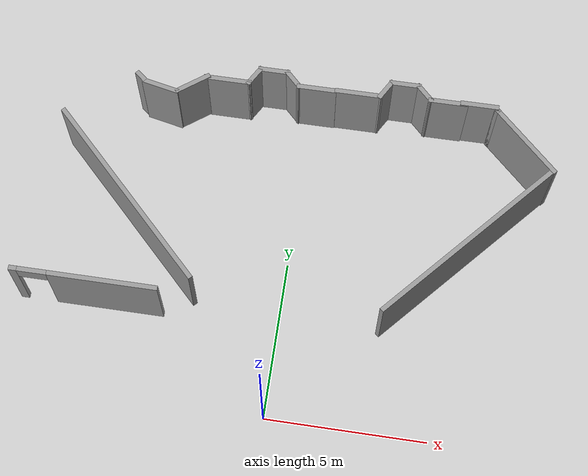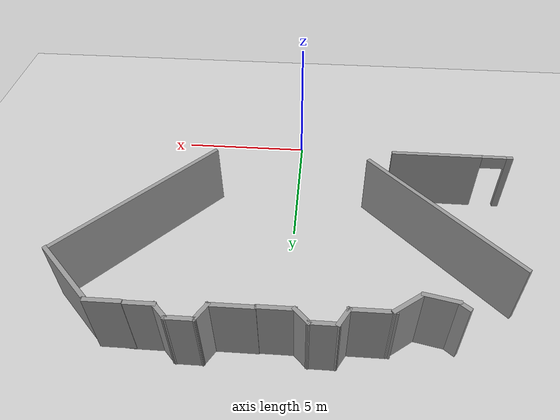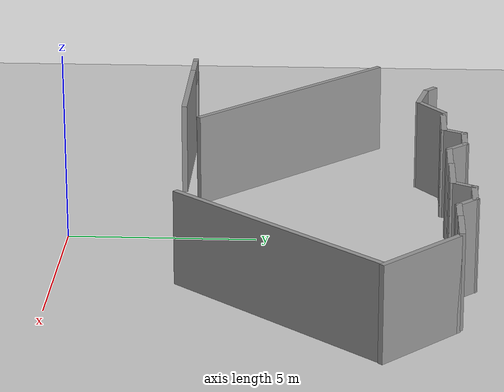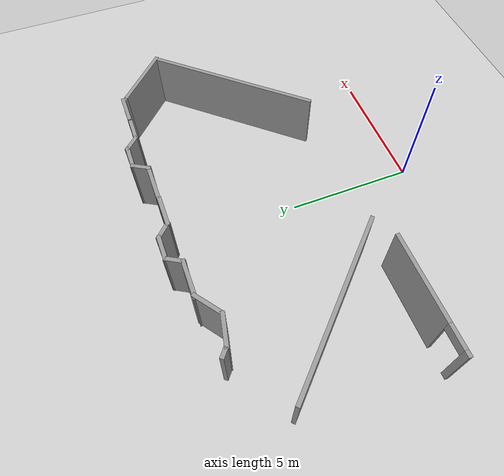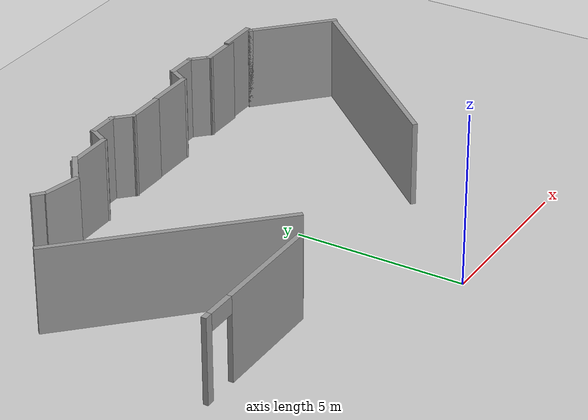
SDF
<sdf version="1.6">
 <world name="default">
  <model name="ground_plane">
   <static>1</static>
   <link name="link">
    <collision name="collision">
     <geometry><plane><normal>0 0 1</normal><size>100 100</size></plane></geometry>
     <surface>
      <contact><collide_bitmask>65535</collide_bitmask></contact>
      <friction><ode><mu>100</mu><mu2>50</mu2></ode></friction>
     </surface>
    </collision>
    <visual name="visual">
     <cast_shadows>0</cast_shadows>
     <geometry><plane><normal>0 0 1</normal><size>100 100</size></plane></geometry>
     <material>
      <script><uri>file://media/materials/scripts/gazebo.material</uri><name>Gazebo/Grey</name></script>
     </material>
    </visual>
   </link>
  </model>
  <model name="wall(6.9)">
   <link name="Wall_106">
    <inertial>
     <mass>1</mass>
     <inertia><ixx>1</ixx><ixy>0</ixy><ixz>0</ixz><iyy>1</iyy><iyz>0</iyz><izz>1</izz></inertia>
    </inertial>
    <visual name="Wall_106_Visual">
     <pose>0 0 1.25 0 -0 0</pose>
     <geometry><box><size>6.9 0.15 2.5</size></box></geometry>
     <material>
      <script><uri>file://media/materials/scripts/gazebo.material</uri><name>Gazebo/Grey</name></script>
      <ambient>1 1 1 1</ambient>
      <shader type="vertex"><normal_map>__default__</normal_map></shader>
      <diffuse>0.7 0.7 0.7 1</diffuse>
      <specular>0.01 0.01 0.01 1</specular>
      <emissive>0 0 0 1</emissive>
     </material>
     <meta><layer>0</layer></meta>
    </visual>
    <collision name="Wall_106_Collision">
     <pose>0 0 1.25 0 -0 0</pose>
     <geometry><box><size>6.75 0.15 2.5</size></box></geometry>
     <surface>
      <friction>
       <ode><mu>1</mu><mu2>1</mu2><fdir1>0 0 0</fdir1><slip1>0</slip1><slip2>0</slip2></ode>
       <torsional>
        <coefficient>1</coefficient>
        <patch_radius>0</patch_radius>
        <surface_radius>0</surface_radius>
        <use_patch_radius>1</use_patch_radius>
        <ode><slip>0</slip></ode>
       </torsional>
      </friction>
      <bounce><restitution_coefficient>0</restitution_coefficient><threshold>1e+06</threshold></bounce>
      <contact>
       <collide_without_contact>0</collide_without_contact>
       <collide_without_contact_bitmask>1</collide_without_contact_bitmask>
       <collide_bitmask>1</collide_bitmask>
       <ode>
        <soft_cfm>0</soft_cfm>
        <soft_erp>0.2</soft_erp>
        <kp>1e+13</kp>
        <kd>1</kd>
        <max_vel>0.01</max_vel>
        <min_depth>0</min_depth>
       </ode>
       <bullet>
        <split_impulse>1</split_impulse>
        <split_impulse_penetration_threshold>-0.01</split_impulse_penetration_threshold>
        <soft_cfm>0</soft_cfm>
        <soft_erp>0.2</soft_erp>
        <kp>1e+13</kp>
        <kd>1</kd>
       </bullet>
      </contact>
     </surface>
    </collision>
   </link>
   <static>1</static>
   <pose>-5.08386 5.75321 0 0 0 -0.789714</pose>
  </model>
  <model name="lift">
   <pose>-1.30167 10.2174 0 0 0 -3.13924</pose>
   <link name="Wall_113">
    <collision name="Wall_113_Collision">
     <geometry><box><size>1.5 0.15 2.5</size></box></geometry>
     <pose>0 0 1.25 0 -0 0</pose>
    </collision>
    <visual name="Wall_113_Visual">
     <pose>0 0 1.25 0 -0 0</pose>
     <geometry><box><size>1.5 0.15 2.5</size></box></geometry>
     <material>
      <script><uri>file://media/materials/scripts/gazebo.material</uri><name>Gazebo/Grey</name></script>
      <ambient>1 1 1 1</ambient>
     </material>
     <meta><layer>0</layer></meta>
    </visual>
    <pose>1.33713 0.261614 0 0 -0 3.14159</pose>
   </link>
   <link name="Wall_114">
    <collision name="Wall_114_Collision">
     <geometry><box><size>0.75 0.15 2.5</size></box></geometry>
     <pose>0 0 1.25 0 -0 0</pose>
    </collision>
    <visual name="Wall_114_Visual">
     <pose>0 0 1.25 0 -0 0</pose>
     <geometry><box><size>0.75 0.15 2.5</size></box></geometry>
     <material>
      <script><uri>file://media/materials/scripts/gazebo.material</uri><name>Gazebo/Grey</name></script>
      <ambient>1 1 1 1</ambient>
     </material>
     <meta><layer>0</layer></meta>
    </visual>
    <pose>0.512132 0.001807 0 0 -0 -2.0944</pose>
   </link>
   <link name="Wall_115">
    <collision name="Wall_115_Collision">
     <geometry><box><size>1 0.15 2.5</size></box></geometry>
     <pose>0 0 1.25 0 -0 0</pose>
    </collision>
    <visual name="Wall_115_Visual">
     <pose>0 0 1.25 0 -0 0</pose>
     <geometry><box><size>1 0.15 2.5</size></box></geometry>
     <material>
      <script><uri>file://media/materials/scripts/gazebo.material</uri><name>Gazebo/Grey</name></script>
      <ambient>1 1 1 1</ambient>
     </material>
     <meta><layer>0</layer></meta>
    </visual>
    <pose>-0.062868 -0.258001 0 0 -0 3.14159</pose>
   </link>
   <link name="Wall_116">
    <collision name="Wall_116_Collision">
     <geometry><box><size>0.75 0.15 2.5</size></box></geometry>
     <pose>0 0 1.25 0 -0 0</pose>
    </collision>
    <visual name="Wall_116_Visual">
     <pose>0 0 1.25 0 -0 0</pose>
     <geometry><box><size>0.75 0.15 2.5</size></box></geometry>
     <material>
      <script><uri>file://media/materials/scripts/gazebo.material</uri><name>Gazebo/Grey</name></script>
      <ambient>1 1 1 1</ambient>
     </material>
     <meta><layer>0</layer></meta>
    </visual>
    <pose>-0.7 -0.045868 0 0 -0 2.35619</pose>
   </link>
   <link name="Wall_117">
    <collision name="Wall_117_Collision">
     <geometry><box><size>1.25 0.15 2.5</size></box></geometry>
     <pose>0 0 1.25 0 -0 0</pose>
    </collision>
    <visual name="Wall_117_Visual">
     <pose>0 0 1.25 0 -0 0</pose>
     <geometry><box><size>1.25 0.15 2.5</size></box></geometry>
     <material>
      <script><uri>file://media/materials/scripts/gazebo.material</uri><name>Gazebo/Grey</name></script>
      <ambient>1 1 1 1</ambient>
     </material>
     <meta><layer>0</layer></meta>
    </visual>
    <pose>-1.46213 0.166263 0 0 -0 3.14159</pose>
   </link>
   <static>1</static>
  </model>
  <model name="lift_clone">
   <pose>2.81764 10.3434 0 0 0 -3.13924</pose>
   <link name="Wall_113">
    <collision name="Wall_113_Collision">
     <geometry><box><size>1.5 0.15 2.5</size></box></geometry>
     <pose>0 0 1.25 0 -0 0</pose>
    </collision>
    <visual name="Wall_113_Visual">
     <pose>0 0 1.25 0 -0 0</pose>
     <geometry><box><size>1.5 0.15 2.5</size></box></geometry>
     <material>
      <script><uri>file://media/materials/scripts/gazebo.material</uri><name>Gazebo/Grey</name></script>
      <ambient>1 1 1 1</ambient>
     </material>
     <meta><layer>0</layer></meta>
    </visual>
    <pose>1.33713 0.261614 0 0 -0 3.14159</pose>
   </link>
   <link name="Wall_114">
    <collision name="Wall_114_Collision">
     <geometry><box><size>0.75 0.15 2.5</size></box></geometry>
     <pose>0 0 1.25 0 -0 0</pose>
    </collision>
    <visual name="Wall_114_Visual">
     <pose>0 0 1.25 0 -0 0</pose>
     <geometry><box><size>0.75 0.15 2.5</size></box></geometry>
     <material>
      <script><uri>file://media/materials/scripts/gazebo.material</uri><name>Gazebo/Grey</name></script>
      <ambient>1 1 1 1</ambient>
     </material>
     <meta><layer>0</layer></meta>
    </visual>
    <pose>0.512132 0.001807 0 0 -0 -2.0944</pose>
   </link>
   <link name="Wall_115">
    <collision name="Wall_115_Collision">
     <geometry><box><size>1 0.15 2.5</size></box></geometry>
     <pose>0 0 1.25 0 -0 0</pose>
    </collision>
    <visual name="Wall_115_Visual">
     <pose>0 0 1.25 0 -0 0</pose>
     <geometry><box><size>1 0.15 2.5</size></box></geometry>
     <material>
      <script><uri>file://media/materials/scripts/gazebo.material</uri><name>Gazebo/Grey</name></script>
      <ambient>1 1 1 1</ambient>
     </material>
     <meta><layer>0</layer></meta>
    </visual>
    <pose>-0.062868 -0.258001 0 0 -0 3.14159</pose>
   </link>
   <link name="Wall_116">
    <collision name="Wall_116_Collision">
     <geometry><box><size>0.75 0.15 2.5</size></box></geometry>
     <pose>0 0 1.25 0 -0 0</pose>
    </collision>
    <visual name="Wall_116_Visual">
     <pose>0 0 1.25 0 -0 0</pose>
     <geometry><box><size>0.75 0.15 2.5</size></box></geometry>
     <material>
      <script><uri>file://media/materials/scripts/gazebo.material</uri><name>Gazebo/Grey</name></script>
      <ambient>1 1 1 1</ambient>
     </material>
     <meta><layer>0</layer></meta>
    </visual>
    <pose>-0.7 -0.045868 0 0 -0 2.35619</pose>
   </link>
   <link name="Wall_117">
    <collision name="Wall_117_Collision">
     <geometry><box><size>1.25 0.15 2.5</size></box></geometry>
     <pose>0 0 1.25 0 -0 0</pose>
    </collision>
    <visual name="Wall_117_Visual">
     <pose>0 0 1.25 0 -0 0</pose>
     <geometry><box><size>1.25 0.15 2.5</size></box></geometry>
     <material>
      <script><uri>file://media/materials/scripts/gazebo.material</uri><name>Gazebo/Grey</name></script>
      <ambient>1 1 1 1</ambient>
     </material>
     <meta><layer>0</layer></meta>
    </visual>
    <pose>-1.46213 0.166263 0 0 -0 3.14159</pose>
   </link>
   <static>1</static>
  </model>
  <model name="wall(6.9)_clone">
   <link name="Wall_106">
    <inertial>
     <mass>1</mass>
     <inertia><ixx>1</ixx><ixy>0</ixy><ixz>0</ixz><iyy>1</iyy><iyz>0</iyz><izz>1</izz></inertia>
    </inertial>
    <visual name="Wall_106_Visual">
     <pose>0 0 1.25 0 -0 0</pose>
     <geometry><box><size>6.9 0.15 2.5</size></box></geometry>
     <material>
      <script><uri>file://media/materials/scripts/gazebo.material</uri><name>Gazebo/Grey</name></script>
      <ambient>1 1 1 1</ambient>
      <shader type="vertex"><normal_map>__default__</normal_map></shader>
      <diffuse>0.7 0.7 0.7 1</diffuse>
      <specular>0.01 0.01 0.01 1</specular>
      <emissive>0 0 0 1</emissive>
     </material>
     <meta><layer>0</layer></meta>
    </visual>
    <collision name="Wall_106_Collision">
     <pose>0 0 1.25 0 -0 0</pose>
     <geometry><box><size>6.75 0.15 2.5</size></box></geometry>
     <surface>
      <friction>
       <ode><mu>1</mu><mu2>1</mu2><fdir1>0 0 0</fdir1><slip1>0</slip1><slip2>0</slip2></ode>
       <torsional>
        <coefficient>1</coefficient>
        <patch_radius>0</patch_radius>
        <surface_radius>0</surface_radius>
        <use_patch_radius>1</use_patch_radius>
        <ode><slip>0</slip></ode>
       </torsional>
      </friction>
      <bounce><restitution_coefficient>0</restitution_coefficient><threshold>1e+06</threshold></bounce>
      <contact>
       <collide_without_contact>0</collide_without_contact>
       <collide_without_contact_bitmask>1</collide_without_contact_bitmask>
       <collide_bitmask>1</collide_bitmask>
       <ode>
        <soft_cfm>0</soft_cfm>
        <soft_erp>0.2</soft_erp>
        <kp>1e+13</kp>
        <kd>1</kd>
        <max_vel>0.01</max_vel>
        <min_depth>0</min_depth>
       </ode>
       <bullet>
        <split_impulse>1</split_impulse>
        <split_impulse_penetration_threshold>-0.01</split_impulse_penetration_threshold>
        <soft_cfm>0</soft_cfm>
        <soft_erp>0.2</soft_erp>
        <kp>1e+13</kp>
        <kd>1</kd>
       </bullet>
      </contact>
     </surface>
    </collision>
   </link>
   <static>1</static>
   <pose>5.35911 5.71378 0 0 0 -2.29576</pose>
  </model>
  <model name="wall_6.75_clone">
   <pose>6.76863 9.22687 0 0 -0 2.38301</pose>
   <link name="Wall_108">
    <collision name="Wall_108_Collision">
     <geometry><box><size>2.75 0.15 2.5</size></box></geometry>
     <pose>0 0 1.25 0 -0 0</pose>
    </collision>
    <visual name="Wall_108_Visual">
     <pose>0 0 1.25 0 -0 0</pose>
     <geometry><box><size>2.75 0.15 2.5</size></box></geometry>
     <material>
      <script><uri>file://media/materials/scripts/gazebo.material</uri><name>Gazebo/Grey</name></script>
      <ambient>1 1 1 1</ambient>
     </material>
     <meta><layer>0</layer></meta>
    </visual>
   </link>
   <link name="Wall_109">
    <collision name="Wall_109_Collision">
     <geometry><box><size>0.15 0.15 2.5</size></box></geometry>
     <pose>0 0 1.25 0 -0 0</pose>
    </collision>
    <visual name="Wall_109_Visual">
     <pose>0 0 1.25 0 -0 0</pose>
     <geometry><box><size>0.15 0.15 2.5</size></box></geometry>
     <material>
      <script><uri>file://media/materials/scripts/gazebo.material</uri><name>Gazebo/Grey</name></script>
      <ambient>0 0 0 1</ambient>
     </material>
     <meta><layer>0</layer></meta>
    </visual>
    <pose>1.3 0 0 0 -0 0</pose>
   </link>
   <static>1</static>
  </model>
  <model name="door_lukna_room_0">
   <pose>-5.81468 2.83917 0 0 -0 0</pose>
   <link name="Wall_15">
    <visual name="Wall_15_Visual_0">
     <pose>-2.1275 0 1.25 0 -0 0</pose>
     <geometry><box><size>0.245 0.15 2.5</size></box></geometry>
     <material>
      <script><uri>file://media/materials/scripts/gazebo.material</uri><name>Gazebo/Grey</name></script>
      <ambient>1 1 1 1</ambient>
     </material>
     <meta><layer>0</layer></meta>
    </visual>
    <collision name="Wall_15_Collision_0">
     <geometry><box><size>0.245 0.15 2.5</size></box></geometry>
     <pose>-2.1275 0 1.25 0 -0 0</pose>
    </collision>
    <visual name="Wall_15_Visual_1">
     <pose>0.5725 0 1.25 0 -0 0</pose>
     <geometry><box><size>3.355 0.15 2.5</size></box></geometry>
     <material>
      <script><uri>file://media/materials/scripts/gazebo.material</uri><name>Gazebo/Grey</name></script>
      <ambient>1 1 1 1</ambient>
     </material>
     <meta><layer>0</layer></meta>
    </visual>
    <collision name="Wall_15_Collision_1">
     <geometry><box><size>3.355 0.15 2.5</size></box></geometry>
     <pose>0.5725 0 1.25 0 -0 0</pose>
    </collision>
    <visual name="Wall_15_Visual_2">
     <pose>-1.555 0 2.25 0 -0 0</pose>
     <geometry><box><size>0.9 0.15 0.5</size></box></geometry>
     <material>
      <script><uri>file://media/materials/scripts/gazebo.material</uri><name>Gazebo/Grey</name></script>
      <ambient>1 1 1 1</ambient>
     </material>
     <meta><layer>0</layer></meta>
    </visual>
    <collision name="Wall_15_Collision_2">
     <geometry><box><size>0.9 0.15 0.5</size></box></geometry>
     <pose>-1.555 0 2.25 0 -0 0</pose>
    </collision>
   </link>
   <static>1</static>
  </model>
  <model name="wall(1.2)_clone">
   <link name="Wall_106">
    <inertial>
     <mass>1</mass>
     <inertia><ixx>1</ixx><ixy>0</ixy><ixz>0</ixz><iyy>1</iyy><iyz>0</iyz><izz>1</izz></inertia>
    </inertial>
    <visual name="Wall_106_Visual">
     <pose>0 0 1.25 0 -0 0</pose>
     <geometry><box><size>1.2 0.15 2.5</size></box></geometry>
     <material>
      <script><uri>file://media/materials/scripts/gazebo.material</uri><name>Gazebo/Grey</name></script>
      <ambient>1 1 1 1</ambient>
      <shader type="vertex"><normal_map>__default__</normal_map></shader>
      <diffuse>0.7 0.7 0.7 1</diffuse>
      <specular>0.01 0.01 0.01 1</specular>
      <emissive>0 0 0 1</emissive>
     </material>
     <meta><layer>0</layer></meta>
    </visual>
    <collision name="Wall_106_Collision">
     <pose>0 0 1.25 0 -0 0</pose>
     <geometry><box><size>1.2 0.15 2.5</size></box></geometry>
     <surface>
      <friction>
       <ode><mu>1</mu><mu2>1</mu2><fdir1>0 0 0</fdir1><slip1>0</slip1><slip2>0</slip2></ode>
       <torsional>
        <coefficient>1</coefficient>
        <patch_radius>0</patch_radius>
        <surface_radius>0</surface_radius>
        <use_patch_radius>1</use_patch_radius>
        <ode><slip>0</slip></ode>
       </torsional>
      </friction>
      <bounce><restitution_coefficient>0</restitution_coefficient><threshold>1e+06</threshold></bounce>
      <contact>
       <collide_without_contact>0</collide_without_contact>
       <collide_without_contact_bitmask>1</collide_without_contact_bitmask>
       <collide_bitmask>1</collide_bitmask>
       <ode>
        <soft_cfm>0</soft_cfm>
        <soft_erp>0.2</soft_erp>
        <kp>1e+13</kp>
        <kd>1</kd>
        <max_vel>0.01</max_vel>
        <min_depth>0</min_depth>
       </ode>
       <bullet>
        <split_impulse>1</split_impulse>
        <split_impulse_penetration_threshold>-0.01</split_impulse_penetration_threshold>
        <soft_cfm>0</soft_cfm>
        <soft_erp>0.2</soft_erp>
        <kp>1e+13</kp>
        <kd>1</kd>
       </bullet>
      </contact>
     </surface>
    </collision>
   </link>
   <static>1</static>
   <pose>-3.68257 9.64813 0.050769 0 -0 0.640713</pose>
  </model>
  <model name="wall(1.2)">
   <link name="Wall_106">
    <inertial>
     <mass>1</mass>
     <inertia><ixx>1</ixx><ixy>0</ixy><ixz>0</ixz><iyy>1</iyy><iyz>0</iyz><izz>1</izz></inertia>
    </inertial>
    <visual name="Wall_106_Visual">
     <pose>0 0 1.25 0 -0 0</pose>
     <geometry><box><size>1.2 0.15 2.5</size></box></geometry>
     <material>
      <script><uri>file://media/materials/scripts/gazebo.material</uri><name>Gazebo/Grey</name></script>
      <ambient>1 1 1 1</ambient>
      <shader type="vertex"><normal_map>__default__</normal_map></shader>
      <diffuse>0.7 0.7 0.7 1</diffuse>
      <specular>0.01 0.01 0.01 1</specular>
      <emissive>0 0 0 1</emissive>
     </material>
     <meta><layer>0</layer></meta>
    </visual>
    <collision name="Wall_106_Collision">
     <pose>0 0 1.25 0 -0 0</pose>
     <geometry><box><size>1.2 0.15 2.5</size></box></geometry>
     <surface>
      <friction>
       <ode><mu>1</mu><mu2>1</mu2><fdir1>0 0 0</fdir1><slip1>0</slip1><slip2>0</slip2></ode>
       <torsional>
        <coefficient>1</coefficient>
        <patch_radius>0</patch_radius>
        <surface_radius>0</surface_radius>
        <use_patch_radius>1</use_patch_radius>
        <ode><slip>0</slip></ode>
       </torsional>
      </friction>
      <bounce><restitution_coefficient>0</restitution_coefficient><threshold>1e+06</threshold></bounce>
      <contact>
       <collide_without_contact>0</collide_without_contact>
       <collide_without_contact_bitmask>1</collide_without_contact_bitmask>
       <collide_bitmask>1</collide_bitmask>
       <ode>
        <soft_cfm>0</soft_cfm>
        <soft_erp>0.2</soft_erp>
        <kp>1e+13</kp>
        <kd>1</kd>
        <max_vel>0.01</max_vel>
        <min_depth>0</min_depth>
       </ode>
       <bullet>
        <split_impulse>1</split_impulse>
        <split_impulse_penetration_threshold>-0.01</split_impulse_penetration_threshold>
        <soft_cfm>0</soft_cfm>
        <soft_erp>0.2</soft_erp>
        <kp>1e+13</kp>
        <kd>1</kd>
       </bullet>
      </contact>
     </surface>
    </collision>
   </link>
   <static>1</static>
   <pose>-4.65892 9.41484 0.050769 0 0 -0.207289</pose>
  </model>
  <model name="wall(6.9)_0">
   <link name="Wall_106">
    <inertial>
     <mass>1</mass>
     <inertia><ixx>1</ixx><ixy>0</ixy><ixz>0</ixz><iyy>1</iyy><iyz>0</iyz><izz>1</izz></inertia>
    </inertial>
    <visual name="Wall_106_Visual">
     <pose>0 0 1.25 0 -0 0</pose>
     <geometry><box><size>0.4 0.15 2.5</size></box></geometry>
     <material>
      <script><uri>file://media/materials/scripts/gazebo.material</uri><name>Gazebo/Grey</name></script>
      <ambient>1 1 1 1</ambient>
      <shader type="vertex"><normal_map>__default__</normal_map></shader>
      <diffuse>0.7 0.7 0.7 1</diffuse>
      <specular>0.01 0.01 0.01 1</specular>
      <emissive>0 0 0 1</emissive>
     </material>
     <meta><layer>0</layer></meta>
    </visual>
    <collision name="Wall_106_Collision">
     <pose>0 0 1.25 0 -0 0</pose>
     <geometry><box><size>0.4 0.15 2.5</size></box></geometry>
     <surface>
      <friction>
       <ode><mu>1</mu><mu2>1</mu2><fdir1>0 0 0</fdir1><slip1>0</slip1><slip2>0</slip2></ode>
       <torsional>
        <coefficient>1</coefficient>
        <patch_radius>0</patch_radius>
        <surface_radius>0</surface_radius>
        <use_patch_radius>1</use_patch_radius>
        <ode><slip>0</slip></ode>
       </torsional>
      </friction>
      <bounce><restitution_coefficient>0</restitution_coefficient><threshold>1e+06</threshold></bounce>
      <contact>
       <collide_without_contact>0</collide_without_contact>
       <collide_without_contact_bitmask>1</collide_without_contact_bitmask>
       <collide_bitmask>1</collide_bitmask>
       <ode>
        <soft_cfm>0</soft_cfm>
        <soft_erp>0.2</soft_erp>
        <kp>1e+13</kp>
        <kd>1</kd>
        <max_vel>0.01</max_vel>
        <min_depth>0</min_depth>
       </ode>
       <bullet>
        <split_impulse>1</split_impulse>
        <split_impulse_penetration_threshold>-0.01</split_impulse_penetration_threshold>
        <soft_cfm>0</soft_cfm>
        <soft_erp>0.2</soft_erp>
        <kp>1e+13</kp>
        <kd>1</kd>
       </bullet>
      </contact>
     </surface>
    </collision>
   </link>
   <static>1</static>
   <pose>-5.32136 9.65621 0.050769 0 0 -0.689163</pose>
  </model>
  <model name="wall(1.2)_clone_0">
   <link name="Wall_106">
    <inertial>
     <mass>1</mass>
     <inertia><ixx>1</ixx><ixy>0</ixy><ixz>0</ixz><iyy>1</iyy><iyz>0</iyz><izz>1</izz></inertia>
    </inertial>
    <visual name="Wall_106_Visual">
     <pose>0 0 1.25 0 -0 0</pose>
     <geometry><box><size>1.2 0.15 2.5</size></box></geometry>
     <material>
      <script><uri>file://media/materials/scripts/gazebo.material</uri><name>Gazebo/Grey</name></script>
      <ambient>1 1 1 1</ambient>
      <shader type="vertex"><normal_map>__default__</normal_map></shader>
      <diffuse>0.7 0.7 0.7 1</diffuse>
      <specular>0.01 0.01 0.01 1</specular>
      <emissive>0 0 0 1</emissive>
     </material>
     <meta><layer>0</layer></meta>
    </visual>
    <collision name="Wall_106_Collision">
     <pose>0 0 1.25 0 -0 0</pose>
     <geometry><box><size>1.2 0.15 2.5</size></box></geometry>
     <surface>
      <friction>
       <ode><mu>1</mu><mu2>1</mu2><fdir1>0 0 0</fdir1><slip1>0</slip1><slip2>0</slip2></ode>
       <torsional>
        <coefficient>1</coefficient>
        <patch_radius>0</patch_radius>
        <surface_radius>0</surface_radius>
        <use_patch_radius>1</use_patch_radius>
        <ode><slip>0</slip></ode>
       </torsional>
      </friction>
      <bounce><restitution_coefficient>0</restitution_coefficient><threshold>1e+06</threshold></bounce>
      <contact>
       <collide_without_contact>0</collide_without_contact>
       <collide_without_contact_bitmask>1</collide_without_contact_bitmask>
       <collide_bitmask>1</collide_bitmask>
       <ode>
        <soft_cfm>0</soft_cfm>
        <soft_erp>0.2</soft_erp>
        <kp>1e+13</kp>
        <kd>1</kd>
        <max_vel>0.01</max_vel>
        <min_depth>0</min_depth>
       </ode>
       <bullet>
        <split_impulse>1</split_impulse>
        <split_impulse_penetration_threshold>-0.01</split_impulse_penetration_threshold>
        <soft_cfm>0</soft_cfm>
        <soft_erp>0.2</soft_erp>
        <kp>1e+13</kp>
        <kd>1</kd>
       </bullet>
      </contact>
     </surface>
    </collision>
   </link>
   <static>1</static>
   <pose>5.2521 10.1955 0.050769 0 -0 0.00317</pose>
  </model>
 </world>
</sdf>
